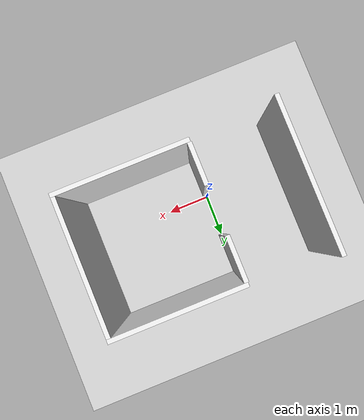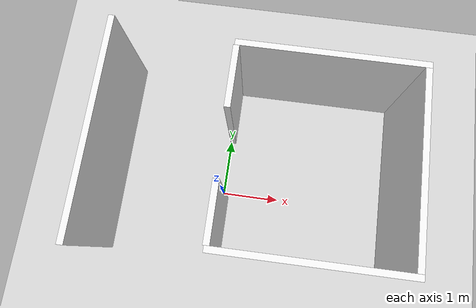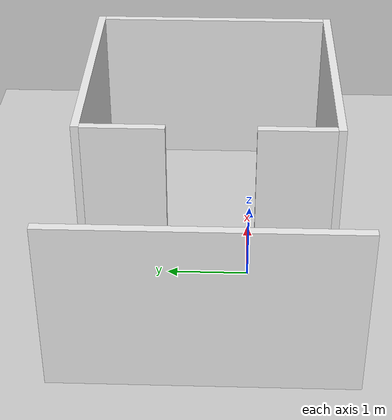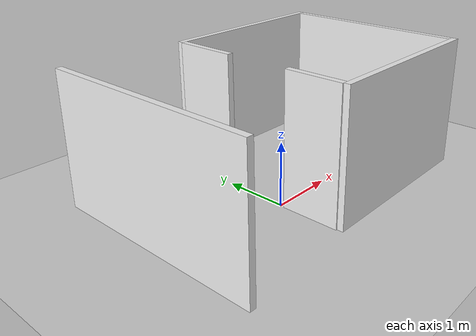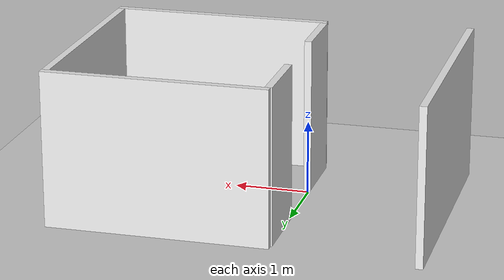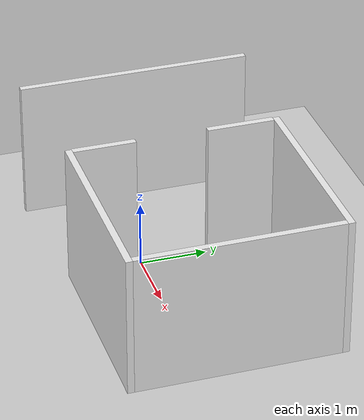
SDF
<sdf version="1.6">
 <world name="default">
  <include><uri>model://ground_plane</uri></include>
  <model name="walls">
   <static>true</static>
   <link name="wall_1">
    <collision name="wall_1_collision">
     <pose>0.03 1.49911 1.05342 0 0 0</pose>
     <geometry><box><size>0.1 1.00178 2.10684</size></box></geometry>
    </collision>
    <visual name="wall_1_visual">
     <pose>0.03 1.49911 1.05342 0 0 0</pose>
     <geometry><box><size>0.1 1.00178 2.10684</size></box></geometry>
     <material>
      <script><uri>file://media/materials/scripts/Gazebo.material</uri><name>Gazebo/White</name></script>
     </material>
    </visual>
   </link>
   <link name="wall_2">
    <collision name="wall_2_collision">
     <pose>0.03 -0.53429 1.05342 0 0 0</pose>
     <geometry><box><size>0.1 0.93142 2.10684</size></box></geometry>
    </collision>
    <visual name="wall_2_visual">
     <pose>0.03 -0.53429 1.05342 0 0 0</pose>
     <geometry><box><size>0.1 0.93142 2.10684</size></box></geometry>
     <material>
      <script><uri>file://media/materials/scripts/Gazebo.material</uri><name>Gazebo/White</name></script>
     </material>
    </visual>
   </link>
   <link name="wall_3">
    <collision name="wall_3_collision">
     <pose>1.5 2.05 1.05342 0 0 0</pose>
     <geometry><box><size>3 0.1 2.10684</size></box></geometry>
    </collision>
    <visual name="wall_3_visual">
     <pose>1.5 2.05 1.05342 0 0 0</pose>
     <geometry><box><size>3 0.1 2.10684</size></box></geometry>
     <material>
      <script><uri>file://media/materials/scripts/Gazebo.material</uri><name>Gazebo/White</name></script>
     </material>
    </visual>
   </link>
   <link name="wall_4">
    <collision name="wall_4_collision">
     <pose>1.5 -1.05 1.05342 0 0 0</pose>
     <geometry><box><size>3.0 0.1 2.10684</size></box></geometry>
    </collision>
    <visual name="wall_4_visual">
     <pose>1.5 -1.05 1.05342 0 0 0</pose>
     <geometry><box><size>3.0 0.1 2.10684</size></box></geometry>
     <material>
      <script><uri>file://media/materials/scripts/Gazebo.material</uri><name>Gazebo/White</name></script>
     </material>
    </visual>
   </link>
   <link name="wall_5">
    <collision name="wall_5_collision">
     <pose>2.95 0.5 1.05342 0 0 0</pose>
     <geometry><box><size>0.1 3 2.10684</size></box></geometry>
    </collision>
    <visual name="wall_5_visual">
     <pose>2.95 0.5 1.05342 0 0 0</pose>
     <geometry><box><size>0.1 3 2.10684</size></box></geometry>
     <material>
      <script><uri>file://media/materials/scripts/Gazebo.material</uri><name>Gazebo/White</name></script>
     </material>
    </visual>
   </link>
   <link name="wall_6">
    <collision name="wall_6_collision">
     <pose>-1.95 0.5 1.05342 0 0 0</pose>
     <geometry><box><size>0.1 3.5 2.10684</size></box></geometry>
    </collision>
    <visual name="wall_6_visual">
     <pose>-1.95 0.5 1.05342 0 0 0</pose>
     <geometry><box><size>0.1 3.5 2.10684</size></box></geometry>
     <material>
      <script><uri>file://media/materials/scripts/Gazebo.material</uri><name>Gazebo/White</name></script>
     </material>
    </visual>
   </link>
  </model>
  <light name="light0" type="point">
   <cast_shadows>0</cast_shadows>
   <diffuse>1 1 1 1</diffuse>
   <specular>0.3 0.3 0.3 1</specular>
   <pose>1.5 0.5 3 0 0 0</pose>
   <direction>0 0 -1</direction>
   <attenuation><range>10</range><linear>0</linear><constant>0.5</constant></attenuation>
  </light>
  <light name="light1" type="point">
   <cast_shadows>0</cast_shadows>
   <diffuse>1 1 1 1</diffuse>
   <specular>0.3 0.3 0.3 1</specular>
   <pose>-1.0 0.5 3 0 0 0</pose>
   <direction>0 0 -1</direction>
   <attenuation><range>10</range><linear>0</linear><constant>0.5</constant></attenuation>
  </light>
  <physics type="ode">
   <max_step_size>0.001</max_step_size>
   <real_time_factor>1</real_time_factor>
   <real_time_update_rate>1000</real_time_update_rate>
   <ode>
    <solver><type>quick</type><iters>100</iters><sor>1.3</sor></solver>
    <constraints>
     <cfm>0</cfm>
     <erp>0.2</erp>
     <contact_max_correcting_vel>100</contact_max_correcting_vel>
     <contact_surface_layer>0.001</contact_surface_layer>
    </constraints>
   </ode>
  </physics>
 </world>
</sdf>
